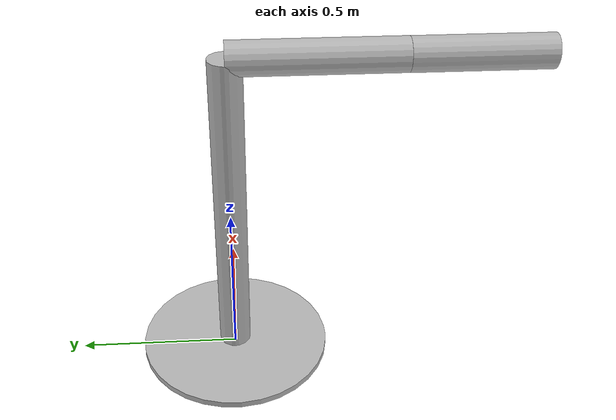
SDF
<?xml version='1.0'?>
<sdf version='1.7'>
  <model name='model2'>
    <link name='base_link'>
      <inertial>
        <pose>-0 -0 0.306512 0 -0 0</pose>
        <mass>106.315</mass>
        <inertia>
          <ixx>12.9223</ixx>
          <ixy>-4.43734e-31</ixy>
          <ixz>2.53689e-15</ixz>
          <iyy>12.9223</iyy>
          <iyz>9.54385e-15</iyz>
          <izz>2.07993</izz>
        </inertia>
      </inertial>
      <collision name='base_link_collision'>
        <pose>0 0 0 0 -0 0</pose>
        <geometry>
          <mesh>
            <scale>1 1 1</scale>
            <uri>model://model2/meshes/base_link.STL</uri>
          </mesh>
        </geometry>
      </collision>
      <visual name='base_link_visual'>
        <pose>0 0 0 0 -0 0</pose>
        <geometry>
          <mesh>
            <scale>1 1 1</scale>
            <uri>model://model2/meshes/base_link.STL</uri>
          </mesh>
        </geometry>
      </visual>
    </link>
    <joint name='R1' type='revolute'>
      <pose relative_to='base_link'>0 0 1.02 1.5708 -0 0</pose>
      <parent>base_link</parent>
      <child>link2</child>
      <axis>
        <xyz>-1 0 0</xyz>
        <limit>
          <lower>-1e+16</lower>
          <upper>1e+16</upper>
        </limit>
        <dynamics>
          <spring_reference>0</spring_reference>
          <spring_stiffness>0</spring_stiffness>
        </dynamics>
      </axis>
    </joint>
    <link name='link2'>
      <pose relative_to='R1'>0 0 0 0 -0 0</pose>
      <inertial>
        <pose>0 0 0.25 0 -0 0</pose>
        <mass>30.5497</mass>
        <inertia>
          <ixx>0.655737</ixx>
          <ixy>1.40836e-32</ixy>
          <ixz>3.52682e-17</ixz>
          <iyy>0.655737</iyy>
          <iyz>-2.17446e-16</iyz>
          <izz>0.038569</izz>
        </inertia>
      </inertial>
      <collision name='link2_collision'>
        <pose>0 0 0 0 -0 0</pose>
        <geometry>
          <mesh>
            <scale>1 1 1</scale>
            <uri>model://model2/meshes/link2.STL</uri>
          </mesh>
        </geometry>
      </collision>
      <visual name='link2_visual'>
        <pose>0 0 0 0 -0 0</pose>
        <geometry>
          <mesh>
            <scale>1 1 1</scale>
            <uri>model://model2/meshes/link2.STL</uri>
          </mesh>
        </geometry>
      </visual>
    </link>
    <joint name='R2' type='revolute'>
      <pose relative_to='link2'>0 0 0.5 0 -0 0</pose>
      <parent>link2</parent>
      <child>link3</child>
      <axis>
        <xyz>1 0 0</xyz>
        <limit>
          <lower>-1e+16</lower>
          <upper>1e+16</upper>
        </limit>
        <dynamics>
          <spring_reference>0</spring_reference>
          <spring_stiffness>0</spring_stiffness>
        </dynamics>
      </axis>
    </joint>
    <link name='link3'>
      <pose relative_to='R2'>0 0 0 0 -0 0</pose>
      <inertial>
        <pose>0 0 0.2 0 -0 0</pose>
        <mass>8.39748</mass>
        <inertia>
          <ixx>0.117267</ixx>
          <ixy>-1.44309e-34</ixy>
          <ixz>-6.66442e-18</ixz>
          <iyy>0.117267</iyy>
          <iyz>-7.81276e-18</iyz>
          <izz>0.0106018</izz>
        </inertia>
      </inertial>
      <collision name='link3_collision'>
        <pose>0 0 0 0 -0 0</pose>
        <geometry>
          <mesh>
            <scale>1 1 1</scale>
            <uri>model://model2/meshes/link3.STL</uri>
          </mesh>
        </geometry>
      </collision>
      <visual name='link3_visual'>
        <pose>0 0 0 0 -0 0</pose>
        <geometry>
          <mesh>
            <scale>1 1 1</scale>
            <uri>model://model2/meshes/link3.STL</uri>
          </mesh>
        </geometry>
      </visual>
    </link>

    <!--fixing base_link to world-->
    <link name="world_fix"></link>
    <joint name ="weld" type="fixed">
      <parent>world</parent>
      <child>base_link</child>
    </joint>
    <!--fixing base_link to world-->

    <plugin name="gazebo_ros_force" filename="libgazebo_ros_force.so">
      <ros>
        <namespace>/demo/link2</namespace>
        <remapping>gazebo_ros_force:=force_demo2</remapping>
      </ros>
      <link_name>link2</link_name>
      <force_frame>link</force_frame>
    </plugin>

    <plugin name="gazebo_ros_force" filename="libgazebo_ros_force.so">
      <ros>
        <namespace>/demo/link3</namespace>
        <remapping>gazebo_ros_force:=force_demo3</remapping>
      </ros>
      <link_name>link3</link_name>
      <force_frame>link</force_frame>
    </plugin>

    <plugin name='joint_publisher' filename='libgazebo_ros_joint_state_publisher.so'>
      <ros>
        <namespace>/myrobot/R1</namespace>
      </ros>
      <update_rate>1000.0</update_rate>
      <joint_name>R1</joint_name>
    </plugin>

    <plugin name='joint_publisher' filename='libgazebo_ros_joint_state_publisher.so'>
      <ros>
        <namespace>/myrobot/R2</namespace>
      </ros>
      <update_rate>1000.0</update_rate>
      <joint_name>R2</joint_name>
    </plugin>

  </model>
</sdf>
